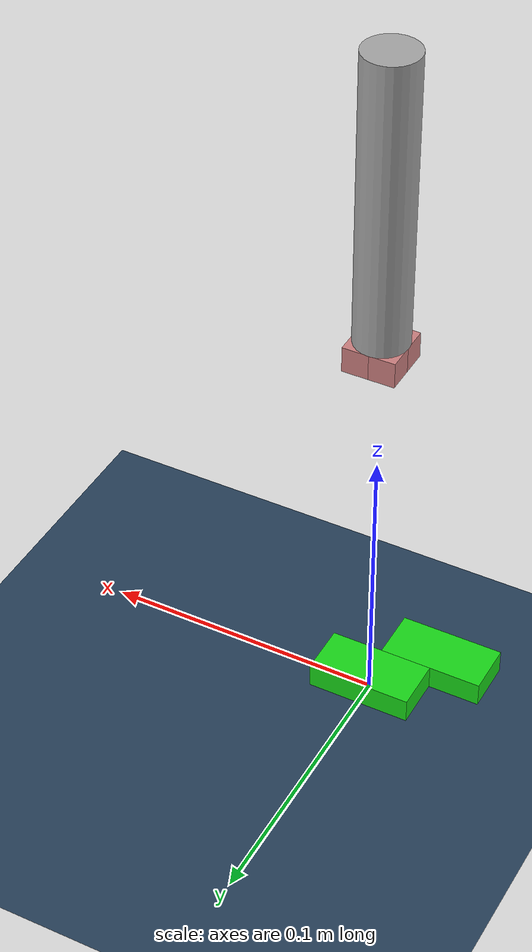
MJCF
<mujoco model="sucker">
  <statistic center="0.3 0 0.4" extent="1.5"/>
  <option integrator="implicitfast"/>
  <asset>
    <texture type="skybox" builtin="gradient" rgb1="0.3 0.5 0.7" rgb2="0 0 0" width="512" height="3072"/>
    <texture type="2d" name="groundplane" builtin="checker" mark="edge" rgb1="0.2 0.3 0.4" rgb2="0.1 0.2 0.3"
      markrgb="0.8 0.8 0.8" width="300" height="300"/>
    <material name="groundplane" texture="groundplane" texuniform="true" texrepeat="5 5" reflectance="0.2"/>
  </asset>
  <default>
    <default class="active_adhesion">
      <geom rgba=".8 .5 .5 1" margin=".00045" gap=".00045"/>
    </default>
    <default class="object">
      <geom rgba=".5 .8 .5 1" density="100"/>
    </default>
  </default>
  <worldbody>
    <light pos="0 0 1.5" dir="0 0 -1" directional="true" castshadow="false"/>
    <geom name="floor" pos="0 0 -0.0001" size="5 5 0.0001" type="plane" material="groundplane"/>
    <body name="teris" pos="0 0 0">
      <geom type="box" size="0.0185 0.00925 0.0045" pos="0 0 0.0045" rgba="0.1 0.85 0.1 1" density="100"/>
      <geom type="box" size="0.0185 0.00925 0.0045" pos="-0.0185 -0.0185 0.0045" rgba="0.1 0.85 0.1 1" density="100"/>
      <freejoint/>
    </body>
    <body name="vaccum" pos="0 0 0.2" gravcomp="0.98">
      <geom type="cylinder" size="0.00925 0.05" rgba="0.647 0.647 0.647 1"/>
      <joint name="vaccum_z" type="slide" axis="0 0 1" damping=".01" range="-0.15 .25"/>
      <body name="vaccum_gripper" pos="0 0 -.05" childclass="active_adhesion">
        <site name="force_sensor" group="3"/>
        <geom type="box" size="0.0045 0.0045 0.0045" pos="-0.0045 -0.0045 -0.0045" />
        <geom type="box" size="0.0045 0.0045 0.0045" pos="0.0045 -0.0045 -0.0045" />
        <geom type="box" size="0.0045 0.0045 0.0045" pos="0.0045 0.0045 -0.0045" />
        <geom type="box" size="0.0045 0.0045 0.0045" pos="-0.0045 0.0045 -0.0045"/>
      </body>
    </body>
  </worldbody>
  <actuator>
    <position joint="vaccum_z" ctrlrange="-0.15 .25" kp="10" kv="1"/>
    <adhesion name="adhere_vaccum" body="vaccum_gripper" ctrlrange="0 1" gain="2"/>
  </actuator>
</mujoco>
